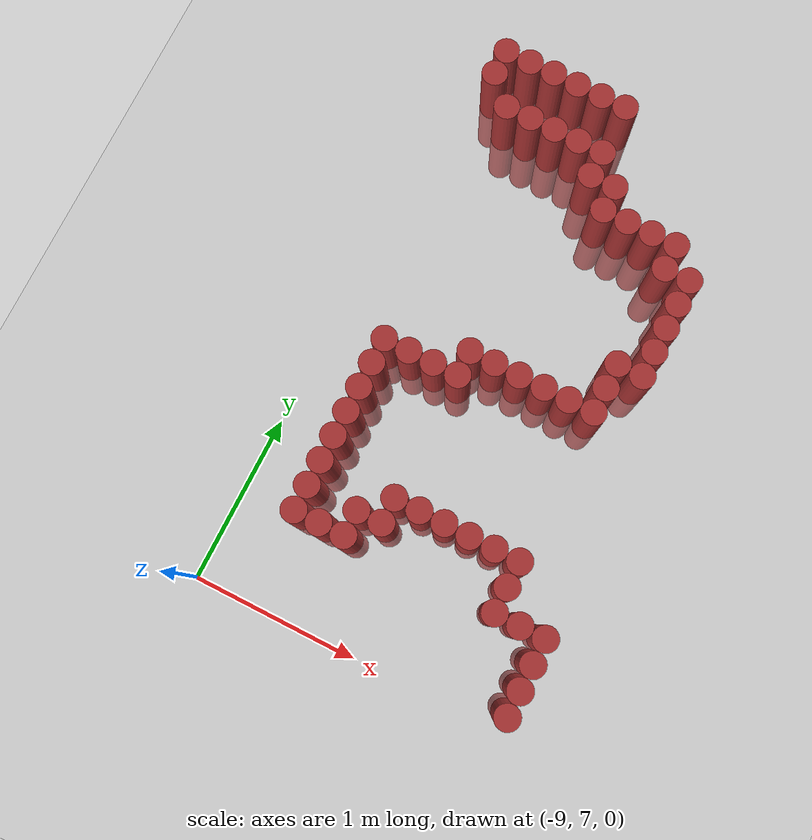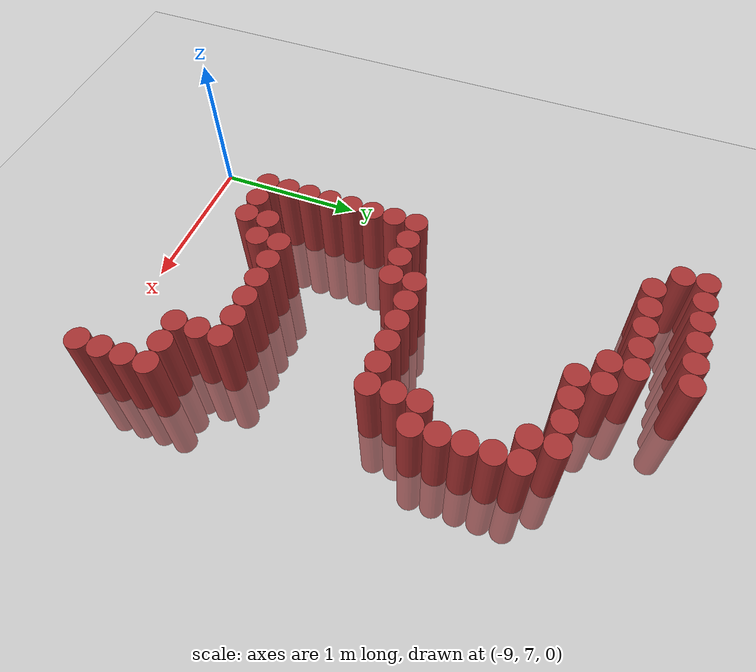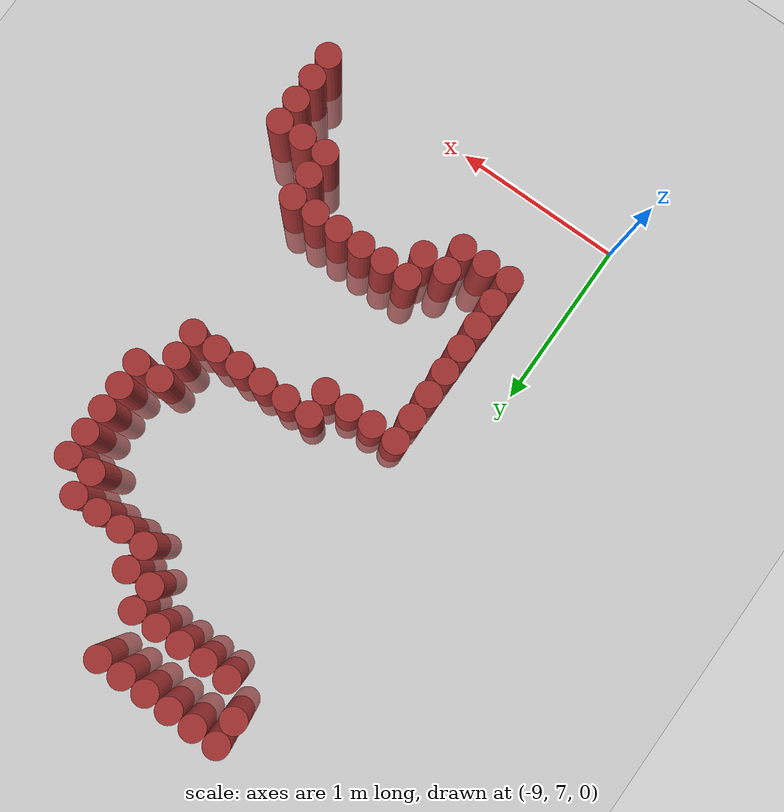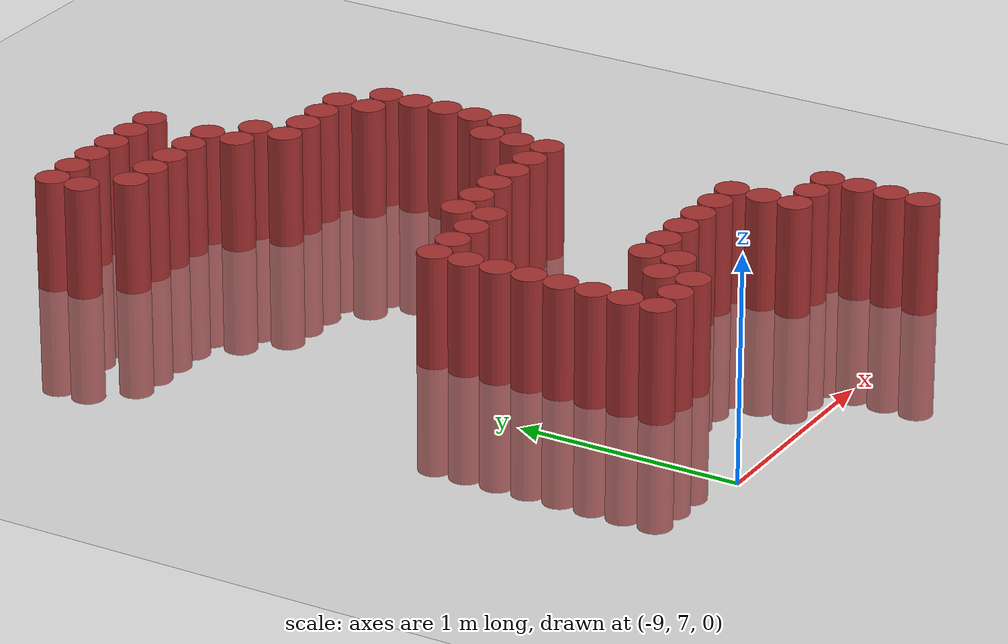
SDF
<sdf version="1.6">
 <world name="default">
  <model name="ground_plane">
   <static>1</static>
   <link name="link">
    <collision name="collision">
     <geometry><plane><normal>0 0 1</normal><size>100 100</size></plane></geometry>
     <surface><friction><ode><mu>100</mu><mu2>50</mu2></ode></friction></surface>
    </collision>
    <visual name="visual">
     <cast_shadows>0</cast_shadows>
     <geometry><plane><normal>0 0 1</normal><size>100 100</size></plane></geometry>
     <material>
      <script><uri>file://media/materials/scripts/gazebo.material</uri><name>Gazebo/Grey</name></script>
     </material>
    </visual>
   </link>
  </model>
  <model name="unit_cylinder_544">
   <static>1</static>
   <pose>-8.775 10.275 0 0 -0 0</pose>
   <link name="link">
    <inertial>
     <mass>1</mass>
     <inertia><ixx>0.145833</ixx><ixy>0</ixy><ixz>0</ixz><iyy>0.145833</iyy><iyz>0</iyz><izz>0.125</izz></inertia>
    </inertial>
    <collision name="collision">
     <geometry><cylinder><radius>0.075</radius><length>1</length></cylinder></geometry>
    </collision>
    <visual name="visual">
     <geometry><cylinder><radius>0.075</radius><length>1</length></cylinder></geometry>
     <material><ambient>0.648 0.192 0.192 1</ambient><diffuse>0.648 0.192 0.192 1</diffuse></material>
     <material>
      <script><name>Gazebo/Grey</name><uri>file://media/materials/scripts/gazebo.material</uri></script>
     </material>
    </visual>
   </link>
  </model>
  <model name="unit_cylinder_545">
   <static>1</static>
   <pose>-8.775 10.425 0 0 -0 0</pose>
   <link name="link">
    <inertial>
     <mass>1</mass>
     <inertia><ixx>0.145833</ixx><ixy>0</ixy><ixz>0</ixz><iyy>0.145833</iyy><iyz>0</iyz><izz>0.125</izz></inertia>
    </inertial>
    <collision name="collision">
     <geometry><cylinder><radius>0.075</radius><length>1</length></cylinder></geometry>
    </collision>
    <visual name="visual">
     <geometry><cylinder><radius>0.075</radius><length>1</length></cylinder></geometry>
     <material><ambient>0.648 0.192 0.192 1</ambient><diffuse>0.648 0.192 0.192 1</diffuse></material>
     <material>
      <script><name>Gazebo/Grey</name><uri>file://media/materials/scripts/gazebo.material</uri></script>
     </material>
    </visual>
   </link>
  </model>
  <model name="unit_cylinder_562">
   <static>1</static>
   <pose>-8.625 7.575 0 0 -0 0</pose>
   <link name="link">
    <inertial>
     <mass>1</mass>
     <inertia><ixx>0.145833</ixx><ixy>0</ixy><ixz>0</ixz><iyy>0.145833</iyy><iyz>0</iyz><izz>0.125</izz></inertia>
    </inertial>
    <collision name="collision">
     <geometry><cylinder><radius>0.075</radius><length>1</length></cylinder></geometry>
    </collision>
    <visual name="visual">
     <geometry><cylinder><radius>0.075</radius><length>1</length></cylinder></geometry>
     <material><ambient>0.648 0.192 0.192 1</ambient><diffuse>0.648 0.192 0.192 1</diffuse></material>
     <material>
      <script><name>Gazebo/Grey</name><uri>file://media/materials/scripts/gazebo.material</uri></script>
     </material>
    </visual>
   </link>
  </model>
  <model name="unit_cylinder_563">
   <static>1</static>
   <pose>-8.625 7.725 0 0 -0 0</pose>
   <link name="link">
    <inertial>
     <mass>1</mass>
     <inertia><ixx>0.145833</ixx><ixy>0</ixy><ixz>0</ixz><iyy>0.145833</iyy><iyz>0</iyz><izz>0.125</izz></inertia>
    </inertial>
    <collision name="collision">
     <geometry><cylinder><radius>0.075</radius><length>1</length></cylinder></geometry>
    </collision>
    <visual name="visual">
     <geometry><cylinder><radius>0.075</radius><length>1</length></cylinder></geometry>
     <material><ambient>0.648 0.192 0.192 1</ambient><diffuse>0.648 0.192 0.192 1</diffuse></material>
     <material>
      <script><name>Gazebo/Grey</name><uri>file://media/materials/scripts/gazebo.material</uri></script>
     </material>
    </visual>
   </link>
  </model>
  <model name="unit_cylinder_564">
   <static>1</static>
   <pose>-8.625 7.875 0 0 -0 0</pose>
   <link name="link">
    <inertial>
     <mass>1</mass>
     <inertia><ixx>0.145833</ixx><ixy>0</ixy><ixz>0</ixz><iyy>0.145833</iyy><iyz>0</iyz><izz>0.125</izz></inertia>
    </inertial>
    <collision name="collision">
     <geometry><cylinder><radius>0.075</radius><length>1</length></cylinder></geometry>
    </collision>
    <visual name="visual">
     <geometry><cylinder><radius>0.075</radius><length>1</length></cylinder></geometry>
     <material><ambient>0.648 0.192 0.192 1</ambient><diffuse>0.648 0.192 0.192 1</diffuse></material>
     <material>
      <script><name>Gazebo/Grey</name><uri>file://media/materials/scripts/gazebo.material</uri></script>
     </material>
    </visual>
   </link>
  </model>
  <model name="unit_cylinder_565">
   <static>1</static>
   <pose>-8.625 8.025 0 0 -0 0</pose>
   <link name="link">
    <inertial>
     <mass>1</mass>
     <inertia><ixx>0.145833</ixx><ixy>0</ixy><ixz>0</ixz><iyy>0.145833</iyy><iyz>0</iyz><izz>0.125</izz></inertia>
    </inertial>
    <collision name="collision">
     <geometry><cylinder><radius>0.075</radius><length>1</length></cylinder></geometry>
    </collision>
    <visual name="visual">
     <geometry><cylinder><radius>0.075</radius><length>1</length></cylinder></geometry>
     <material><ambient>0.648 0.192 0.192 1</ambient><diffuse>0.648 0.192 0.192 1</diffuse></material>
     <material>
      <script><name>Gazebo/Grey</name><uri>file://media/materials/scripts/gazebo.material</uri></script>
     </material>
    </visual>
   </link>
  </model>
  <model name="unit_cylinder_566">
   <static>1</static>
   <pose>-8.625 8.175 0 0 -0 0</pose>
   <link name="link">
    <inertial>
     <mass>1</mass>
     <inertia><ixx>0.145833</ixx><ixy>0</ixy><ixz>0</ixz><iyy>0.145833</iyy><iyz>0</iyz><izz>0.125</izz></inertia>
    </inertial>
    <collision name="collision">
     <geometry><cylinder><radius>0.075</radius><length>1</length></cylinder></geometry>
    </collision>
    <visual name="visual">
     <geometry><cylinder><radius>0.075</radius><length>1</length></cylinder></geometry>
     <material><ambient>0.648 0.192 0.192 1</ambient><diffuse>0.648 0.192 0.192 1</diffuse></material>
     <material>
      <script><name>Gazebo/Grey</name><uri>file://media/materials/scripts/gazebo.material</uri></script>
     </material>
    </visual>
   </link>
  </model>
  <model name="unit_cylinder_567">
   <static>1</static>
   <pose>-8.625 8.325 0 0 -0 0</pose>
   <link name="link">
    <inertial>
     <mass>1</mass>
     <inertia><ixx>0.145833</ixx><ixy>0</ixy><ixz>0</ixz><iyy>0.145833</iyy><iyz>0</iyz><izz>0.125</izz></inertia>
    </inertial>
    <collision name="collision">
     <geometry><cylinder><radius>0.075</radius><length>1</length></cylinder></geometry>
    </collision>
    <visual name="visual">
     <geometry><cylinder><radius>0.075</radius><length>1</length></cylinder></geometry>
     <material><ambient>0.648 0.192 0.192 1</ambient><diffuse>0.648 0.192 0.192 1</diffuse></material>
     <material>
      <script><name>Gazebo/Grey</name><uri>file://media/materials/scripts/gazebo.material</uri></script>
     </material>
    </visual>
   </link>
  </model>
  <model name="unit_cylinder_568">
   <static>1</static>
   <pose>-8.625 8.475 0 0 -0 0</pose>
   <link name="link">
    <inertial>
     <mass>1</mass>
     <inertia><ixx>0.145833</ixx><ixy>0</ixy><ixz>0</ixz><iyy>0.145833</iyy><iyz>0</iyz><izz>0.125</izz></inertia>
    </inertial>
    <collision name="collision">
     <geometry><cylinder><radius>0.075</radius><length>1</length></cylinder></geometry>
    </collision>
    <visual name="visual">
     <geometry><cylinder><radius>0.075</radius><length>1</length></cylinder></geometry>
     <material><ambient>0.648 0.192 0.192 1</ambient><diffuse>0.648 0.192 0.192 1</diffuse></material>
     <material>
      <script><name>Gazebo/Grey</name><uri>file://media/materials/scripts/gazebo.material</uri></script>
     </material>
    </visual>
   </link>
  </model>
  <model name="unit_cylinder_569">
   <static>1</static>
   <pose>-8.625 8.625 0 0 -0 0</pose>
   <link name="link">
    <inertial>
     <mass>1</mass>
     <inertia><ixx>0.145833</ixx><ixy>0</ixy><ixz>0</ixz><iyy>0.145833</iyy><iyz>0</iyz><izz>0.125</izz></inertia>
    </inertial>
    <collision name="collision">
     <geometry><cylinder><radius>0.075</radius><length>1</length></cylinder></geometry>
    </collision>
    <visual name="visual">
     <geometry><cylinder><radius>0.075</radius><length>1</length></cylinder></geometry>
     <material><ambient>0.648 0.192 0.192 1</ambient><diffuse>0.648 0.192 0.192 1</diffuse></material>
     <material>
      <script><name>Gazebo/Grey</name><uri>file://media/materials/scripts/gazebo.material</uri></script>
     </material>
    </visual>
   </link>
  </model>
  <model name="unit_cylinder_570">
   <static>1</static>
   <pose>-8.625 10.125 0 0 -0 0</pose>
   <link name="link">
    <inertial>
     <mass>1</mass>
     <inertia><ixx>0.145833</ixx><ixy>0</ixy><ixz>0</ixz><iyy>0.145833</iyy><iyz>0</iyz><izz>0.125</izz></inertia>
    </inertial>
    <collision name="collision">
     <geometry><cylinder><radius>0.075</radius><length>1</length></cylinder></geometry>
    </collision>
    <visual name="visual">
     <geometry><cylinder><radius>0.075</radius><length>1</length></cylinder></geometry>
     <material><ambient>0.648 0.192 0.192 1</ambient><diffuse>0.648 0.192 0.192 1</diffuse></material>
     <material>
      <script><name>Gazebo/Grey</name><uri>file://media/materials/scripts/gazebo.material</uri></script>
     </material>
    </visual>
   </link>
  </model>
  <model name="unit_cylinder_571">
   <static>1</static>
   <pose>-8.625 10.425 0 0 -0 0</pose>
   <link name="link">
    <inertial>
     <mass>1</mass>
     <inertia><ixx>0.145833</ixx><ixy>0</ixy><ixz>0</ixz><iyy>0.145833</iyy><iyz>0</iyz><izz>0.125</izz></inertia>
    </inertial>
    <collision name="collision">
     <geometry><cylinder><radius>0.075</radius><length>1</length></cylinder></geometry>
    </collision>
    <visual name="visual">
     <geometry><cylinder><radius>0.075</radius><length>1</length></cylinder></geometry>
     <material><ambient>0.648 0.192 0.192 1</ambient><diffuse>0.648 0.192 0.192 1</diffuse></material>
     <material>
      <script><name>Gazebo/Grey</name><uri>file://media/materials/scripts/gazebo.material</uri></script>
     </material>
    </visual>
   </link>
  </model>
  <model name="unit_cylinder_579">
   <static>1</static>
   <pose>-8.475 7.575 0 0 -0 0</pose>
   <link name="link">
    <inertial>
     <mass>1</mass>
     <inertia><ixx>0.145833</ixx><ixy>0</ixy><ixz>0</ixz><iyy>0.145833</iyy><iyz>0</iyz><izz>0.125</izz></inertia>
    </inertial>
    <collision name="collision">
     <geometry><cylinder><radius>0.075</radius><length>1</length></cylinder></geometry>
    </collision>
    <visual name="visual">
     <geometry><cylinder><radius>0.075</radius><length>1</length></cylinder></geometry>
     <material><ambient>0.648 0.192 0.192 1</ambient><diffuse>0.648 0.192 0.192 1</diffuse></material>
     <material>
      <script><name>Gazebo/Grey</name><uri>file://media/materials/scripts/gazebo.material</uri></script>
     </material>
    </visual>
   </link>
  </model>
  <model name="unit_cylinder_580">
   <static>1</static>
   <pose>-8.475 8.625 0 0 -0 0</pose>
   <link name="link">
    <inertial>
     <mass>1</mass>
     <inertia><ixx>0.145833</ixx><ixy>0</ixy><ixz>0</ixz><iyy>0.145833</iyy><iyz>0</iyz><izz>0.125</izz></inertia>
    </inertial>
    <collision name="collision">
     <geometry><cylinder><radius>0.075</radius><length>1</length></cylinder></geometry>
    </collision>
    <visual name="visual">
     <geometry><cylinder><radius>0.075</radius><length>1</length></cylinder></geometry>
     <material><ambient>0.648 0.192 0.192 1</ambient><diffuse>0.648 0.192 0.192 1</diffuse></material>
     <material>
      <script><name>Gazebo/Grey</name><uri>file://media/materials/scripts/gazebo.material</uri></script>
     </material>
    </visual>
   </link>
  </model>
  <model name="unit_cylinder_581">
   <static>1</static>
   <pose>-8.475 10.125 0 0 -0 0</pose>
   <link name="link">
    <inertial>
     <mass>1</mass>
     <inertia><ixx>0.145833</ixx><ixy>0</ixy><ixz>0</ixz><iyy>0.145833</iyy><iyz>0</iyz><izz>0.125</izz></inertia>
    </inertial>
    <collision name="collision">
     <geometry><cylinder><radius>0.075</radius><length>1</length></cylinder></geometry>
    </collision>
    <visual name="visual">
     <geometry><cylinder><radius>0.075</radius><length>1</length></cylinder></geometry>
     <material><ambient>0.648 0.192 0.192 1</ambient><diffuse>0.648 0.192 0.192 1</diffuse></material>
     <material>
      <script><name>Gazebo/Grey</name><uri>file://media/materials/scripts/gazebo.material</uri></script>
     </material>
    </visual>
   </link>
  </model>
  <model name="unit_cylinder_582">
   <static>1</static>
   <pose>-8.475 10.425 0 0 -0 0</pose>
   <link name="link">
    <inertial>
     <mass>1</mass>
     <inertia><ixx>0.145833</ixx><ixy>0</ixy><ixz>0</ixz><iyy>0.145833</iyy><iyz>0</iyz><izz>0.125</izz></inertia>
    </inertial>
    <collision name="collision">
     <geometry><cylinder><radius>0.075</radius><length>1</length></cylinder></geometry>
    </collision>
    <visual name="visual">
     <geometry><cylinder><radius>0.075</radius><length>1</length></cylinder></geometry>
     <material><ambient>0.648 0.192 0.192 1</ambient><diffuse>0.648 0.192 0.192 1</diffuse></material>
     <material>
      <script><name>Gazebo/Grey</name><uri>file://media/materials/scripts/gazebo.material</uri></script>
     </material>
    </visual>
   </link>
  </model>
  <model name="unit_cylinder_601">
   <static>1</static>
   <pose>-8.325 7.575 0 0 -0 0</pose>
   <link name="link">
    <inertial>
     <mass>1</mass>
     <inertia><ixx>0.145833</ixx><ixy>0</ixy><ixz>0</ixz><iyy>0.145833</iyy><iyz>0</iyz><izz>0.125</izz></inertia>
    </inertial>
    <collision name="collision">
     <geometry><cylinder><radius>0.075</radius><length>1</length></cylinder></geometry>
    </collision>
    <visual name="visual">
     <geometry><cylinder><radius>0.075</radius><length>1</length></cylinder></geometry>
     <material><ambient>0.648 0.192 0.192 1</ambient><diffuse>0.648 0.192 0.192 1</diffuse></material>
     <material>
      <script><name>Gazebo/Grey</name><uri>file://media/materials/scripts/gazebo.material</uri></script>
     </material>
    </visual>
   </link>
  </model>
  <model name="unit_cylinder_602">
   <static>1</static>
   <pose>-8.325 7.725 0 0 -0 0</pose>
   <link name="link">
    <inertial>
     <mass>1</mass>
     <inertia><ixx>0.145833</ixx><ixy>0</ixy><ixz>0</ixz><iyy>0.145833</iyy><iyz>0</iyz><izz>0.125</izz></inertia>
    </inertial>
    <collision name="collision">
     <geometry><cylinder><radius>0.075</radius><length>1</length></cylinder></geometry>
    </collision>
    <visual name="visual">
     <geometry><cylinder><radius>0.075</radius><length>1</length></cylinder></geometry>
     <material><ambient>0.648 0.192 0.192 1</ambient><diffuse>0.648 0.192 0.192 1</diffuse></material>
     <material>
      <script><name>Gazebo/Grey</name><uri>file://media/materials/scripts/gazebo.material</uri></script>
     </material>
    </visual>
   </link>
  </model>
  <model name="unit_cylinder_603">
   <static>1</static>
   <pose>-8.325 8.625 0 0 -0 0</pose>
   <link name="link">
    <inertial>
     <mass>1</mass>
     <inertia><ixx>0.145833</ixx><ixy>0</ixy><ixz>0</ixz><iyy>0.145833</iyy><iyz>0</iyz><izz>0.125</izz></inertia>
    </inertial>
    <collision name="collision">
     <geometry><cylinder><radius>0.075</radius><length>1</length></cylinder></geometry>
    </collision>
    <visual name="visual">
     <geometry><cylinder><radius>0.075</radius><length>1</length></cylinder></geometry>
     <material><ambient>0.648 0.192 0.192 1</ambient><diffuse>0.648 0.192 0.192 1</diffuse></material>
     <material>
      <script><name>Gazebo/Grey</name><uri>file://media/materials/scripts/gazebo.material</uri></script>
     </material>
    </visual>
   </link>
  </model>
  <model name="unit_cylinder_604">
   <static>1</static>
   <pose>-8.325 10.125 0 0 -0 0</pose>
   <link name="link">
    <inertial>
     <mass>1</mass>
     <inertia><ixx>0.145833</ixx><ixy>0</ixy><ixz>0</ixz><iyy>0.145833</iyy><iyz>0</iyz><izz>0.125</izz></inertia>
    </inertial>
    <collision name="collision">
     <geometry><cylinder><radius>0.075</radius><length>1</length></cylinder></geometry>
    </collision>
    <visual name="visual">
     <geometry><cylinder><radius>0.075</radius><length>1</length></cylinder></geometry>
     <material><ambient>0.648 0.192 0.192 1</ambient><diffuse>0.648 0.192 0.192 1</diffuse></material>
     <material>
      <script><name>Gazebo/Grey</name><uri>file://media/materials/scripts/gazebo.material</uri></script>
     </material>
    </visual>
   </link>
  </model>
  <model name="unit_cylinder_605">
   <static>1</static>
   <pose>-8.325 10.425 0 0 -0 0</pose>
   <link name="link">
    <inertial>
     <mass>1</mass>
     <inertia><ixx>0.145833</ixx><ixy>0</ixy><ixz>0</ixz><iyy>0.145833</iyy><iyz>0</iyz><izz>0.125</izz></inertia>
    </inertial>
    <collision name="collision">
     <geometry><cylinder><radius>0.075</radius><length>1</length></cylinder></geometry>
    </collision>
    <visual name="visual">
     <geometry><cylinder><radius>0.075</radius><length>1</length></cylinder></geometry>
     <material><ambient>0.648 0.192 0.192 1</ambient><diffuse>0.648 0.192 0.192 1</diffuse></material>
     <material>
      <script><name>Gazebo/Grey</name><uri>file://media/materials/scripts/gazebo.material</uri></script>
     </material>
    </visual>
   </link>
  </model>
  <model name="unit_cylinder_620">
   <static>1</static>
   <pose>-8.175 7.725 0 0 -0 0</pose>
   <link name="link">
    <inertial>
     <mass>1</mass>
     <inertia><ixx>0.145833</ixx><ixy>0</ixy><ixz>0</ixz><iyy>0.145833</iyy><iyz>0</iyz><izz>0.125</izz></inertia>
    </inertial>
    <collision name="collision">
     <geometry><cylinder><radius>0.075</radius><length>1</length></cylinder></geometry>
    </collision>
    <visual name="visual">
     <geometry><cylinder><radius>0.075</radius><length>1</length></cylinder></geometry>
     <material><ambient>0.648 0.192 0.192 1</ambient><diffuse>0.648 0.192 0.192 1</diffuse></material>
     <material>
      <script><name>Gazebo/Grey</name><uri>file://media/materials/scripts/gazebo.material</uri></script>
     </material>
    </visual>
   </link>
  </model>
  <model name="unit_cylinder_621">
   <static>1</static>
   <pose>-8.175 7.875 0 0 -0 0</pose>
   <link name="link">
    <inertial>
     <mass>1</mass>
     <inertia><ixx>0.145833</ixx><ixy>0</ixy><ixz>0</ixz><iyy>0.145833</iyy><iyz>0</iyz><izz>0.125</izz></inertia>
    </inertial>
    <collision name="collision">
     <geometry><cylinder><radius>0.075</radius><length>1</length></cylinder></geometry>
    </collision>
    <visual name="visual">
     <geometry><cylinder><radius>0.075</radius><length>1</length></cylinder></geometry>
     <material><ambient>0.648 0.192 0.192 1</ambient><diffuse>0.648 0.192 0.192 1</diffuse></material>
     <material>
      <script><name>Gazebo/Grey</name><uri>file://media/materials/scripts/gazebo.material</uri></script>
     </material>
    </visual>
   </link>
  </model>
  <model name="unit_cylinder_622">
   <static>1</static>
   <pose>-8.175 8.625 0 0 -0 0</pose>
   <link name="link">
    <inertial>
     <mass>1</mass>
     <inertia><ixx>0.145833</ixx><ixy>0</ixy><ixz>0</ixz><iyy>0.145833</iyy><iyz>0</iyz><izz>0.125</izz></inertia>
    </inertial>
    <collision name="collision">
     <geometry><cylinder><radius>0.075</radius><length>1</length></cylinder></geometry>
    </collision>
    <visual name="visual">
     <geometry><cylinder><radius>0.075</radius><length>1</length></cylinder></geometry>
     <material><ambient>0.648 0.192 0.192 1</ambient><diffuse>0.648 0.192 0.192 1</diffuse></material>
     <material>
      <script><name>Gazebo/Grey</name><uri>file://media/materials/scripts/gazebo.material</uri></script>
     </material>
    </visual>
   </link>
  </model>
  <model name="unit_cylinder_623">
   <static>1</static>
   <pose>-8.175 8.775 0 0 -0 0</pose>
   <link name="link">
    <inertial>
     <mass>1</mass>
     <inertia><ixx>0.145833</ixx><ixy>0</ixy><ixz>0</ixz><iyy>0.145833</iyy><iyz>0</iyz><izz>0.125</izz></inertia>
    </inertial>
    <collision name="collision">
     <geometry><cylinder><radius>0.075</radius><length>1</length></cylinder></geometry>
    </collision>
    <visual name="visual">
     <geometry><cylinder><radius>0.075</radius><length>1</length></cylinder></geometry>
     <material><ambient>0.648 0.192 0.192 1</ambient><diffuse>0.648 0.192 0.192 1</diffuse></material>
     <material>
      <script><name>Gazebo/Grey</name><uri>file://media/materials/scripts/gazebo.material</uri></script>
     </material>
    </visual>
   </link>
  </model>
  <model name="unit_cylinder_624">
   <static>1</static>
   <pose>-8.175 10.125 0 0 -0 0</pose>
   <link name="link">
    <inertial>
     <mass>1</mass>
     <inertia><ixx>0.145833</ixx><ixy>0</ixy><ixz>0</ixz><iyy>0.145833</iyy><iyz>0</iyz><izz>0.125</izz></inertia>
    </inertial>
    <collision name="collision">
     <geometry><cylinder><radius>0.075</radius><length>1</length></cylinder></geometry>
    </collision>
    <visual name="visual">
     <geometry><cylinder><radius>0.075</radius><length>1</length></cylinder></geometry>
     <material><ambient>0.648 0.192 0.192 1</ambient><diffuse>0.648 0.192 0.192 1</diffuse></material>
     <material>
      <script><name>Gazebo/Grey</name><uri>file://media/materials/scripts/gazebo.material</uri></script>
     </material>
    </visual>
   </link>
  </model>
  <model name="unit_cylinder_625">
   <static>1</static>
   <pose>-8.175 10.425 0 0 -0 0</pose>
   <link name="link">
    <inertial>
     <mass>1</mass>
     <inertia><ixx>0.145833</ixx><ixy>0</ixy><ixz>0</ixz><iyy>0.145833</iyy><iyz>0</iyz><izz>0.125</izz></inertia>
    </inertial>
    <collision name="collision">
     <geometry><cylinder><radius>0.075</radius><length>1</length></cylinder></geometry>
    </collision>
    <visual name="visual">
     <geometry><cylinder><radius>0.075</radius><length>1</length></cylinder></geometry>
     <material><ambient>0.648 0.192 0.192 1</ambient><diffuse>0.648 0.192 0.192 1</diffuse></material>
     <material>
      <script><name>Gazebo/Grey</name><uri>file://media/materials/scripts/gazebo.material</uri></script>
     </material>
    </visual>
   </link>
  </model>
  <model name="unit_cylinder_634">
   <static>1</static>
   <pose>-8.025 7.875 0 0 -0 0</pose>
   <link name="link">
    <inertial>
     <mass>1</mass>
     <inertia><ixx>0.145833</ixx><ixy>0</ixy><ixz>0</ixz><iyy>0.145833</iyy><iyz>0</iyz><izz>0.125</izz></inertia>
    </inertial>
    <collision name="collision">
     <geometry><cylinder><radius>0.075</radius><length>1</length></cylinder></geometry>
    </collision>
    <visual name="visual">
     <geometry><cylinder><radius>0.075</radius><length>1</length></cylinder></geometry>
     <material><ambient>0.648 0.192 0.192 1</ambient><diffuse>0.648 0.192 0.192 1</diffuse></material>
     <material>
      <script><name>Gazebo/Grey</name><uri>file://media/materials/scripts/gazebo.material</uri></script>
     </material>
    </visual>
   </link>
  </model>
  <model name="unit_cylinder_635">
   <static>1</static>
   <pose>-8.025 8.775 0 0 -0 0</pose>
   <link name="link">
    <inertial>
     <mass>1</mass>
     <inertia><ixx>0.145833</ixx><ixy>0</ixy><ixz>0</ixz><iyy>0.145833</iyy><iyz>0</iyz><izz>0.125</izz></inertia>
    </inertial>
    <collision name="collision">
     <geometry><cylinder><radius>0.075</radius><length>1</length></cylinder></geometry>
    </collision>
    <visual name="visual">
     <geometry><cylinder><radius>0.075</radius><length>1</length></cylinder></geometry>
     <material><ambient>0.648 0.192 0.192 1</ambient><diffuse>0.648 0.192 0.192 1</diffuse></material>
     <material>
      <script><name>Gazebo/Grey</name><uri>file://media/materials/scripts/gazebo.material</uri></script>
     </material>
    </visual>
   </link>
  </model>
  <model name="unit_cylinder_636">
   <static>1</static>
   <pose>-8.025 9.975 0 0 -0 0</pose>
   <link name="link">
    <inertial>
     <mass>1</mass>
     <inertia><ixx>0.145833</ixx><ixy>0</ixy><ixz>0</ixz><iyy>0.145833</iyy><iyz>0</iyz><izz>0.125</izz></inertia>
    </inertial>
    <collision name="collision">
     <geometry><cylinder><radius>0.075</radius><length>1</length></cylinder></geometry>
    </collision>
    <visual name="visual">
     <geometry><cylinder><radius>0.075</radius><length>1</length></cylinder></geometry>
     <material><ambient>0.648 0.192 0.192 1</ambient><diffuse>0.648 0.192 0.192 1</diffuse></material>
     <material>
      <script><name>Gazebo/Grey</name><uri>file://media/materials/scripts/gazebo.material</uri></script>
     </material>
    </visual>
   </link>
  </model>
  <model name="unit_cylinder_637">
   <static>1</static>
   <pose>-8.025 10.125 0 0 -0 0</pose>
   <link name="link">
    <inertial>
     <mass>1</mass>
     <inertia><ixx>0.145833</ixx><ixy>0</ixy><ixz>0</ixz><iyy>0.145833</iyy><iyz>0</iyz><izz>0.125</izz></inertia>
    </inertial>
    <collision name="collision">
     <geometry><cylinder><radius>0.075</radius><length>1</length></cylinder></geometry>
    </collision>
    <visual name="visual">
     <geometry><cylinder><radius>0.075</radius><length>1</length></cylinder></geometry>
     <material><ambient>0.648 0.192 0.192 1</ambient><diffuse>0.648 0.192 0.192 1</diffuse></material>
     <material>
      <script><name>Gazebo/Grey</name><uri>file://media/materials/scripts/gazebo.material</uri></script>
     </material>
    </visual>
   </link>
  </model>
  <model name="unit_cylinder_638">
   <static>1</static>
   <pose>-8.025 10.425 0 0 -0 0</pose>
   <link name="link">
    <inertial>
     <mass>1</mass>
     <inertia><ixx>0.145833</ixx><ixy>0</ixy><ixz>0</ixz><iyy>0.145833</iyy><iyz>0</iyz><izz>0.125</izz></inertia>
    </inertial>
    <collision name="collision">
     <geometry><cylinder><radius>0.075</radius><length>1</length></cylinder></geometry>
    </collision>
    <visual name="visual">
     <geometry><cylinder><radius>0.075</radius><length>1</length></cylinder></geometry>
     <material><ambient>0.648 0.192 0.192 1</ambient><diffuse>0.648 0.192 0.192 1</diffuse></material>
     <material>
      <script><name>Gazebo/Grey</name><uri>file://media/materials/scripts/gazebo.material</uri></script>
     </material>
    </visual>
   </link>
  </model>
  <model name="unit_cylinder_653">
   <static>1</static>
   <pose>-7.875 7.875 0 0 -0 0</pose>
   <link name="link">
    <inertial>
     <mass>1</mass>
     <inertia><ixx>0.145833</ixx><ixy>0</ixy><ixz>0</ixz><iyy>0.145833</iyy><iyz>0</iyz><izz>0.125</izz></inertia>
    </inertial>
    <collision name="collision">
     <geometry><cylinder><radius>0.075</radius><length>1</length></cylinder></geometry>
    </collision>
    <visual name="visual">
     <geometry><cylinder><radius>0.075</radius><length>1</length></cylinder></geometry>
     <material><ambient>0.648 0.192 0.192 1</ambient><diffuse>0.648 0.192 0.192 1</diffuse></material>
     <material>
      <script><name>Gazebo/Grey</name><uri>file://media/materials/scripts/gazebo.material</uri></script>
     </material>
    </visual>
   </link>
  </model>
  <model name="unit_cylinder_654">
   <static>1</static>
   <pose>-7.875 8.775 0 0 -0 0</pose>
   <link name="link">
    <inertial>
     <mass>1</mass>
     <inertia><ixx>0.145833</ixx><ixy>0</ixy><ixz>0</ixz><iyy>0.145833</iyy><iyz>0</iyz><izz>0.125</izz></inertia>
    </inertial>
    <collision name="collision">
     <geometry><cylinder><radius>0.075</radius><length>1</length></cylinder></geometry>
    </collision>
    <visual name="visual">
     <geometry><cylinder><radius>0.075</radius><length>1</length></cylinder></geometry>
     <material><ambient>0.648 0.192 0.192 1</ambient><diffuse>0.648 0.192 0.192 1</diffuse></material>
     <material>
      <script><name>Gazebo/Grey</name><uri>file://media/materials/scripts/gazebo.material</uri></script>
     </material>
    </visual>
   </link>
  </model>
  <model name="unit_cylinder_655">
   <static>1</static>
   <pose>-7.875 9.825 0 0 -0 0</pose>
   <link name="link">
    <inertial>
     <mass>1</mass>
     <inertia><ixx>0.145833</ixx><ixy>0</ixy><ixz>0</ixz><iyy>0.145833</iyy><iyz>0</iyz><izz>0.125</izz></inertia>
    </inertial>
    <collision name="collision">
     <geometry><cylinder><radius>0.075</radius><length>1</length></cylinder></geometry>
    </collision>
    <visual name="visual">
     <geometry><cylinder><radius>0.075</radius><length>1</length></cylinder></geometry>
     <material><ambient>0.648 0.192 0.192 1</ambient><diffuse>0.648 0.192 0.192 1</diffuse></material>
     <material>
      <script><name>Gazebo/Grey</name><uri>file://media/materials/scripts/gazebo.material</uri></script>
     </material>
    </visual>
   </link>
  </model>
  <model name="unit_cylinder_656">
   <static>1</static>
   <pose>-7.875 9.975 0 0 -0 0</pose>
   <link name="link">
    <inertial>
     <mass>1</mass>
     <inertia><ixx>0.145833</ixx><ixy>0</ixy><ixz>0</ixz><iyy>0.145833</iyy><iyz>0</iyz><izz>0.125</izz></inertia>
    </inertial>
    <collision name="collision">
     <geometry><cylinder><radius>0.075</radius><length>1</length></cylinder></geometry>
    </collision>
    <visual name="visual">
     <geometry><cylinder><radius>0.075</radius><length>1</length></cylinder></geometry>
     <material><ambient>0.648 0.192 0.192 1</ambient><diffuse>0.648 0.192 0.192 1</diffuse></material>
     <material>
      <script><name>Gazebo/Grey</name><uri>file://media/materials/scripts/gazebo.material</uri></script>
     </material>
    </visual>
   </link>
  </model>
  <model name="unit_cylinder_670">
   <static>1</static>
   <pose>-7.725 7.875 0 0 -0 0</pose>
   <link name="link">
    <inertial>
     <mass>1</mass>
     <inertia><ixx>0.145833</ixx><ixy>0</ixy><ixz>0</ixz><iyy>0.145833</iyy><iyz>0</iyz><izz>0.125</izz></inertia>
    </inertial>
    <collision name="collision">
     <geometry><cylinder><radius>0.075</radius><length>1</length></cylinder></geometry>
    </collision>
    <visual name="visual">
     <geometry><cylinder><radius>0.075</radius><length>1</length></cylinder></geometry>
     <material><ambient>0.648 0.192 0.192 1</ambient><diffuse>0.648 0.192 0.192 1</diffuse></material>
     <material>
      <script><name>Gazebo/Grey</name><uri>file://media/materials/scripts/gazebo.material</uri></script>
     </material>
    </visual>
   </link>
  </model>
  <model name="unit_cylinder_671">
   <static>1</static>
   <pose>-7.725 8.775 0 0 -0 0</pose>
   <link name="link">
    <inertial>
     <mass>1</mass>
     <inertia><ixx>0.145833</ixx><ixy>0</ixy><ixz>0</ixz><iyy>0.145833</iyy><iyz>0</iyz><izz>0.125</izz></inertia>
    </inertial>
    <collision name="collision">
     <geometry><cylinder><radius>0.075</radius><length>1</length></cylinder></geometry>
    </collision>
    <visual name="visual">
     <geometry><cylinder><radius>0.075</radius><length>1</length></cylinder></geometry>
     <material><ambient>0.648 0.192 0.192 1</ambient><diffuse>0.648 0.192 0.192 1</diffuse></material>
     <material>
      <script><name>Gazebo/Grey</name><uri>file://media/materials/scripts/gazebo.material</uri></script>
     </material>
    </visual>
   </link>
  </model>
  <model name="unit_cylinder_672">
   <static>1</static>
   <pose>-7.725 9.825 0 0 -0 0</pose>
   <link name="link">
    <inertial>
     <mass>1</mass>
     <inertia><ixx>0.145833</ixx><ixy>0</ixy><ixz>0</ixz><iyy>0.145833</iyy><iyz>0</iyz><izz>0.125</izz></inertia>
    </inertial>
    <collision name="collision">
     <geometry><cylinder><radius>0.075</radius><length>1</length></cylinder></geometry>
    </collision>
    <visual name="visual">
     <geometry><cylinder><radius>0.075</radius><length>1</length></cylinder></geometry>
     <material><ambient>0.648 0.192 0.192 1</ambient><diffuse>0.648 0.192 0.192 1</diffuse></material>
     <material>
      <script><name>Gazebo/Grey</name><uri>file://media/materials/scripts/gazebo.material</uri></script>
     </material>
    </visual>
   </link>
  </model>
  <model name="unit_cylinder_696">
   <static>1</static>
   <pose>-7.575 7.875 0 0 -0 0</pose>
   <link name="link">
    <inertial>
     <mass>1</mass>
     <inertia><ixx>0.145833</ixx><ixy>0</ixy><ixz>0</ixz><iyy>0.145833</iyy><iyz>0</iyz><izz>0.125</izz></inertia>
    </inertial>
    <collision name="collision">
     <geometry><cylinder><radius>0.075</radius><length>1</length></cylinder></geometry>
    </collision>
    <visual name="visual">
     <geometry><cylinder><radius>0.075</radius><length>1</length></cylinder></geometry>
     <material><ambient>0.648 0.192 0.192 1</ambient><diffuse>0.648 0.192 0.192 1</diffuse></material>
     <material>
      <script><name>Gazebo/Grey</name><uri>file://media/materials/scripts/gazebo.material</uri></script>
     </material>
    </visual>
   </link>
  </model>
  <model name="unit_cylinder_697">
   <static>1</static>
   <pose>-7.575 8.775 0 0 -0 0</pose>
   <link name="link">
    <inertial>
     <mass>1</mass>
     <inertia><ixx>0.145833</ixx><ixy>0</ixy><ixz>0</ixz><iyy>0.145833</iyy><iyz>0</iyz><izz>0.125</izz></inertia>
    </inertial>
    <collision name="collision">
     <geometry><cylinder><radius>0.075</radius><length>1</length></cylinder></geometry>
    </collision>
    <visual name="visual">
     <geometry><cylinder><radius>0.075</radius><length>1</length></cylinder></geometry>
     <material><ambient>0.648 0.192 0.192 1</ambient><diffuse>0.648 0.192 0.192 1</diffuse></material>
     <material>
      <script><name>Gazebo/Grey</name><uri>file://media/materials/scripts/gazebo.material</uri></script>
     </material>
    </visual>
   </link>
  </model>
  <model name="unit_cylinder_698">
   <static>1</static>
   <pose>-7.575 9.825 0 0 -0 0</pose>
   <link name="link">
    <inertial>
     <mass>1</mass>
     <inertia><ixx>0.145833</ixx><ixy>0</ixy><ixz>0</ixz><iyy>0.145833</iyy><iyz>0</iyz><izz>0.125</izz></inertia>
    </inertial>
    <collision name="collision">
     <geometry><cylinder><radius>0.075</radius><length>1</length></cylinder></geometry>
    </collision>
    <visual name="visual">
     <geometry><cylinder><radius>0.075</radius><length>1</length></cylinder></geometry>
     <material><ambient>0.648 0.192 0.192 1</ambient><diffuse>0.648 0.192 0.192 1</diffuse></material>
     <material>
      <script><name>Gazebo/Grey</name><uri>file://media/materials/scripts/gazebo.material</uri></script>
     </material>
    </visual>
   </link>
  </model>
  <model name="unit_cylinder_720">
   <static>1</static>
   <pose>-7.425 7.575 0 0 -0 0</pose>
   <link name="link">
    <inertial>
     <mass>1</mass>
     <inertia><ixx>0.145833</ixx><ixy>0</ixy><ixz>0</ixz><iyy>0.145833</iyy><iyz>0</iyz><izz>0.125</izz></inertia>
    </inertial>
    <collision name="collision">
     <geometry><cylinder><radius>0.075</radius><length>1</length></cylinder></geometry>
    </collision>
    <visual name="visual">
     <geometry><cylinder><radius>0.075</radius><length>1</length></cylinder></geometry>
     <material><ambient>0.648 0.192 0.192 1</ambient><diffuse>0.648 0.192 0.192 1</diffuse></material>
     <material>
      <script><name>Gazebo/Grey</name><uri>file://media/materials/scripts/gazebo.material</uri></script>
     </material>
    </visual>
   </link>
  </model>
  <model name="unit_cylinder_721">
   <static>1</static>
   <pose>-7.425 7.725 0 0 -0 0</pose>
   <link name="link">
    <inertial>
     <mass>1</mass>
     <inertia><ixx>0.145833</ixx><ixy>0</ixy><ixz>0</ixz><iyy>0.145833</iyy><iyz>0</iyz><izz>0.125</izz></inertia>
    </inertial>
    <collision name="collision">
     <geometry><cylinder><radius>0.075</radius><length>1</length></cylinder></geometry>
    </collision>
    <visual name="visual">
     <geometry><cylinder><radius>0.075</radius><length>1</length></cylinder></geometry>
     <material><ambient>0.648 0.192 0.192 1</ambient><diffuse>0.648 0.192 0.192 1</diffuse></material>
     <material>
      <script><name>Gazebo/Grey</name><uri>file://media/materials/scripts/gazebo.material</uri></script>
     </material>
    </visual>
   </link>
  </model>
  <model name="unit_cylinder_722">
   <static>1</static>
   <pose>-7.425 7.875 0 0 -0 0</pose>
   <link name="link">
    <inertial>
     <mass>1</mass>
     <inertia><ixx>0.145833</ixx><ixy>0</ixy><ixz>0</ixz><iyy>0.145833</iyy><iyz>0</iyz><izz>0.125</izz></inertia>
    </inertial>
    <collision name="collision">
     <geometry><cylinder><radius>0.075</radius><length>1</length></cylinder></geometry>
    </collision>
    <visual name="visual">
     <geometry><cylinder><radius>0.075</radius><length>1</length></cylinder></geometry>
     <material><ambient>0.648 0.192 0.192 1</ambient><diffuse>0.648 0.192 0.192 1</diffuse></material>
     <material>
      <script><name>Gazebo/Grey</name><uri>file://media/materials/scripts/gazebo.material</uri></script>
     </material>
    </visual>
   </link>
  </model>
  <model name="unit_cylinder_723">
   <static>1</static>
   <pose>-7.425 8.775 0 0 -0 0</pose>
   <link name="link">
    <inertial>
     <mass>1</mass>
     <inertia><ixx>0.145833</ixx><ixy>0</ixy><ixz>0</ixz><iyy>0.145833</iyy><iyz>0</iyz><izz>0.125</izz></inertia>
    </inertial>
    <collision name="collision">
     <geometry><cylinder><radius>0.075</radius><length>1</length></cylinder></geometry>
    </collision>
    <visual name="visual">
     <geometry><cylinder><radius>0.075</radius><length>1</length></cylinder></geometry>
     <material><ambient>0.648 0.192 0.192 1</ambient><diffuse>0.648 0.192 0.192 1</diffuse></material>
     <material>
      <script><name>Gazebo/Grey</name><uri>file://media/materials/scripts/gazebo.material</uri></script>
     </material>
    </visual>
   </link>
  </model>
  <model name="unit_cylinder_724">
   <static>1</static>
   <pose>-7.425 8.925 0 0 -0 0</pose>
   <link name="link">
    <inertial>
     <mass>1</mass>
     <inertia><ixx>0.145833</ixx><ixy>0</ixy><ixz>0</ixz><iyy>0.145833</iyy><iyz>0</iyz><izz>0.125</izz></inertia>
    </inertial>
    <collision name="collision">
     <geometry><cylinder><radius>0.075</radius><length>1</length></cylinder></geometry>
    </collision>
    <visual name="visual">
     <geometry><cylinder><radius>0.075</radius><length>1</length></cylinder></geometry>
     <material><ambient>0.648 0.192 0.192 1</ambient><diffuse>0.648 0.192 0.192 1</diffuse></material>
     <material>
      <script><name>Gazebo/Grey</name><uri>file://media/materials/scripts/gazebo.material</uri></script>
     </material>
    </visual>
   </link>
  </model>
  <model name="unit_cylinder_725">
   <static>1</static>
   <pose>-7.425 9.075 0 0 -0 0</pose>
   <link name="link">
    <inertial>
     <mass>1</mass>
     <inertia><ixx>0.145833</ixx><ixy>0</ixy><ixz>0</ixz><iyy>0.145833</iyy><iyz>0</iyz><izz>0.125</izz></inertia>
    </inertial>
    <collision name="collision">
     <geometry><cylinder><radius>0.075</radius><length>1</length></cylinder></geometry>
    </collision>
    <visual name="visual">
     <geometry><cylinder><radius>0.075</radius><length>1</length></cylinder></geometry>
     <material><ambient>0.648 0.192 0.192 1</ambient><diffuse>0.648 0.192 0.192 1</diffuse></material>
     <material>
      <script><name>Gazebo/Grey</name><uri>file://media/materials/scripts/gazebo.material</uri></script>
     </material>
    </visual>
   </link>
  </model>
  <model name="unit_cylinder_726">
   <static>1</static>
   <pose>-7.425 9.675 0 0 -0 0</pose>
   <link name="link">
    <inertial>
     <mass>1</mass>
     <inertia><ixx>0.145833</ixx><ixy>0</ixy><ixz>0</ixz><iyy>0.145833</iyy><iyz>0</iyz><izz>0.125</izz></inertia>
    </inertial>
    <collision name="collision">
     <geometry><cylinder><radius>0.075</radius><length>1</length></cylinder></geometry>
    </collision>
    <visual name="visual">
     <geometry><cylinder><radius>0.075</radius><length>1</length></cylinder></geometry>
     <material><ambient>0.648 0.192 0.192 1</ambient><diffuse>0.648 0.192 0.192 1</diffuse></material>
     <material>
      <script><name>Gazebo/Grey</name><uri>file://media/materials/scripts/gazebo.material</uri></script>
     </material>
    </visual>
   </link>
  </model>
  <model name="unit_cylinder_727">
   <static>1</static>
   <pose>-7.425 9.825 0 0 -0 0</pose>
   <link name="link">
    <inertial>
     <mass>1</mass>
     <inertia><ixx>0.145833</ixx><ixy>0</ixy><ixz>0</ixz><iyy>0.145833</iyy><iyz>0</iyz><izz>0.125</izz></inertia>
    </inertial>
    <collision name="collision">
     <geometry><cylinder><radius>0.075</radius><length>1</length></cylinder></geometry>
    </collision>
    <visual name="visual">
     <geometry><cylinder><radius>0.075</radius><length>1</length></cylinder></geometry>
     <material><ambient>0.648 0.192 0.192 1</ambient><diffuse>0.648 0.192 0.192 1</diffuse></material>
     <material>
      <script><name>Gazebo/Grey</name><uri>file://media/materials/scripts/gazebo.material</uri></script>
     </material>
    </visual>
   </link>
  </model>
  <model name="unit_cylinder_747">
   <static>1</static>
   <pose>-7.275 7.575 0 0 -0 0</pose>
   <link name="link">
    <inertial>
     <mass>1</mass>
     <inertia><ixx>0.145833</ixx><ixy>0</ixy><ixz>0</ixz><iyy>0.145833</iyy><iyz>0</iyz><izz>0.125</izz></inertia>
    </inertial>
    <collision name="collision">
     <geometry><cylinder><radius>0.075</radius><length>1</length></cylinder></geometry>
    </collision>
    <visual name="visual">
     <geometry><cylinder><radius>0.075</radius><length>1</length></cylinder></geometry>
     <material><ambient>0.648 0.192 0.192 1</ambient><diffuse>0.648 0.192 0.192 1</diffuse></material>
     <material>
      <script><name>Gazebo/Grey</name><uri>file://media/materials/scripts/gazebo.material</uri></script>
     </material>
    </visual>
   </link>
  </model>
  <model name="unit_cylinder_748">
   <static>1</static>
   <pose>-7.275 9.075 0 0 -0 0</pose>
   <link name="link">
    <inertial>
     <mass>1</mass>
     <inertia><ixx>0.145833</ixx><ixy>0</ixy><ixz>0</ixz><iyy>0.145833</iyy><iyz>0</iyz><izz>0.125</izz></inertia>
    </inertial>
    <collision name="collision">
     <geometry><cylinder><radius>0.075</radius><length>1</length></cylinder></geometry>
    </collision>
    <visual name="visual">
     <geometry><cylinder><radius>0.075</radius><length>1</length></cylinder></geometry>
     <material><ambient>0.648 0.192 0.192 1</ambient><diffuse>0.648 0.192 0.192 1</diffuse></material>
     <material>
      <script><name>Gazebo/Grey</name><uri>file://media/materials/scripts/gazebo.material</uri></script>
     </material>
    </visual>
   </link>
  </model>
  <model name="unit_cylinder_749">
   <static>1</static>
   <pose>-7.275 9.225 0 0 -0 0</pose>
   <link name="link">
    <inertial>
     <mass>1</mass>
     <inertia><ixx>0.145833</ixx><ixy>0</ixy><ixz>0</ixz><iyy>0.145833</iyy><iyz>0</iyz><izz>0.125</izz></inertia>
    </inertial>
    <collision name="collision">
     <geometry><cylinder><radius>0.075</radius><length>1</length></cylinder></geometry>
    </collision>
    <visual name="visual">
     <geometry><cylinder><radius>0.075</radius><length>1</length></cylinder></geometry>
     <material><ambient>0.648 0.192 0.192 1</ambient><diffuse>0.648 0.192 0.192 1</diffuse></material>
     <material>
      <script><name>Gazebo/Grey</name><uri>file://media/materials/scripts/gazebo.material</uri></script>
     </material>
    </visual>
   </link>
  </model>
  <model name="unit_cylinder_750">
   <static>1</static>
   <pose>-7.275 9.375 0 0 -0 0</pose>
   <link name="link">
    <inertial>
     <mass>1</mass>
     <inertia><ixx>0.145833</ixx><ixy>0</ixy><ixz>0</ixz><iyy>0.145833</iyy><iyz>0</iyz><izz>0.125</izz></inertia>
    </inertial>
    <collision name="collision">
     <geometry><cylinder><radius>0.075</radius><length>1</length></cylinder></geometry>
    </collision>
    <visual name="visual">
     <geometry><cylinder><radius>0.075</radius><length>1</length></cylinder></geometry>
     <material><ambient>0.648 0.192 0.192 1</ambient><diffuse>0.648 0.192 0.192 1</diffuse></material>
     <material>
      <script><name>Gazebo/Grey</name><uri>file://media/materials/scripts/gazebo.material</uri></script>
     </material>
    </visual>
   </link>
  </model>
  <model name="unit_cylinder_751">
   <static>1</static>
   <pose>-7.275 9.525 0 0 -0 0</pose>
   <link name="link">
    <inertial>
     <mass>1</mass>
     <inertia><ixx>0.145833</ixx><ixy>0</ixy><ixz>0</ixz><iyy>0.145833</iyy><iyz>0</iyz><izz>0.125</izz></inertia>
    </inertial>
    <collision name="collision">
     <geometry><cylinder><radius>0.075</radius><length>1</length></cylinder></geometry>
    </collision>
    <visual name="visual">
     <geometry><cylinder><radius>0.075</radius><length>1</length></cylinder></geometry>
     <material><ambient>0.648 0.192 0.192 1</ambient><diffuse>0.648 0.192 0.192 1</diffuse></material>
     <material>
      <script><name>Gazebo/Grey</name><uri>file://media/materials/scripts/gazebo.material</uri></script>
     </material>
    </visual>
   </link>
  </model>
  <model name="unit_cylinder_752">
   <static>1</static>
   <pose>-7.275 9.675 0 0 -0 0</pose>
   <link name="link">
    <inertial>
     <mass>1</mass>
     <inertia><ixx>0.145833</ixx><ixy>0</ixy><ixz>0</ixz><iyy>0.145833</iyy><iyz>0</iyz><izz>0.125</izz></inertia>
    </inertial>
    <collision name="collision">
     <geometry><cylinder><radius>0.075</radius><length>1</length></cylinder></geometry>
    </collision>
    <visual name="visual">
     <geometry><cylinder><radius>0.075</radius><length>1</length></cylinder></geometry>
     <material><ambient>0.648 0.192 0.192 1</ambient><diffuse>0.648 0.192 0.192 1</diffuse></material>
     <material>
      <script><name>Gazebo/Grey</name><uri>file://media/materials/scripts/gazebo.material</uri></script>
     </material>
    </visual>
   </link>
  </model>
  <model name="unit_cylinder_765">
   <static>1</static>
   <pose>-7.125 7.125 0 0 -0 0</pose>
   <link name="link">
    <inertial>
     <mass>1</mass>
     <inertia><ixx>0.145833</ixx><ixy>0</ixy><ixz>0</ixz><iyy>0.145833</iyy><iyz>0</iyz><izz>0.125</izz></inertia>
    </inertial>
    <collision name="collision">
     <geometry><cylinder><radius>0.075</radius><length>1</length></cylinder></geometry>
    </collision>
    <visual name="visual">
     <geometry><cylinder><radius>0.075</radius><length>1</length></cylinder></geometry>
     <material><ambient>0.648 0.192 0.192 1</ambient><diffuse>0.648 0.192 0.192 1</diffuse></material>
     <material>
      <script><name>Gazebo/Grey</name><uri>file://media/materials/scripts/gazebo.material</uri></script>
     </material>
    </visual>
   </link>
  </model>
  <model name="unit_cylinder_766">
   <static>1</static>
   <pose>-7.125 7.275 0 0 -0 0</pose>
   <link name="link">
    <inertial>
     <mass>1</mass>
     <inertia><ixx>0.145833</ixx><ixy>0</ixy><ixz>0</ixz><iyy>0.145833</iyy><iyz>0</iyz><izz>0.125</izz></inertia>
    </inertial>
    <collision name="collision">
     <geometry><cylinder><radius>0.075</radius><length>1</length></cylinder></geometry>
    </collision>
    <visual name="visual">
     <geometry><cylinder><radius>0.075</radius><length>1</length></cylinder></geometry>
     <material><ambient>0.648 0.192 0.192 1</ambient><diffuse>0.648 0.192 0.192 1</diffuse></material>
     <material>
      <script><name>Gazebo/Grey</name><uri>file://media/materials/scripts/gazebo.material</uri></script>
     </material>
    </visual>
   </link>
  </model>
  <model name="unit_cylinder_767">
   <static>1</static>
   <pose>-7.125 7.425 0 0 -0 0</pose>
   <link name="link">
    <inertial>
     <mass>1</mass>
     <inertia><ixx>0.145833</ixx><ixy>0</ixy><ixz>0</ixz><iyy>0.145833</iyy><iyz>0</iyz><izz>0.125</izz></inertia>
    </inertial>
    <collision name="collision">
     <geometry><cylinder><radius>0.075</radius><length>1</length></cylinder></geometry>
    </collision>
    <visual name="visual">
     <geometry><cylinder><radius>0.075</radius><length>1</length></cylinder></geometry>
     <material><ambient>0.648 0.192 0.192 1</ambient><diffuse>0.648 0.192 0.192 1</diffuse></material>
     <material>
      <script><name>Gazebo/Grey</name><uri>file://media/materials/scripts/gazebo.material</uri></script>
     </material>
    </visual>
   </link>
  </model>
  <model name="unit_cylinder_768">
   <static>1</static>
   <pose>-7.125 7.575 0 0 -0 0</pose>
   <link name="link">
    <inertial>
     <mass>1</mass>
     <inertia><ixx>0.145833</ixx><ixy>0</ixy><ixz>0</ixz><iyy>0.145833</iyy><iyz>0</iyz><izz>0.125</izz></inertia>
    </inertial>
    <collision name="collision">
     <geometry><cylinder><radius>0.075</radius><length>1</length></cylinder></geometry>
    </collision>
    <visual name="visual">
     <geometry><cylinder><radius>0.075</radius><length>1</length></cylinder></geometry>
     <material><ambient>0.648 0.192 0.192 1</ambient><diffuse>0.648 0.192 0.192 1</diffuse></material>
     <material>
      <script><name>Gazebo/Grey</name><uri>file://media/materials/scripts/gazebo.material</uri></script>
     </material>
    </visual>
   </link>
  </model>
 </world>
</sdf>
